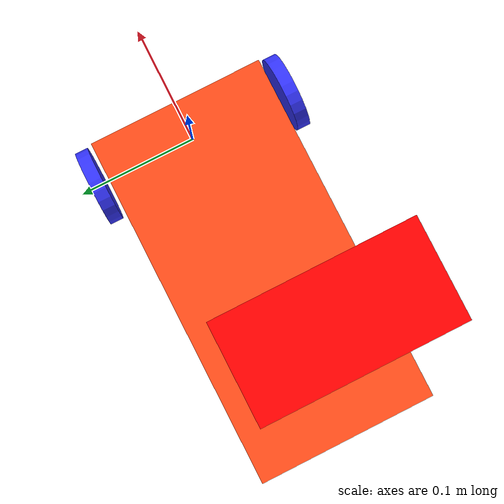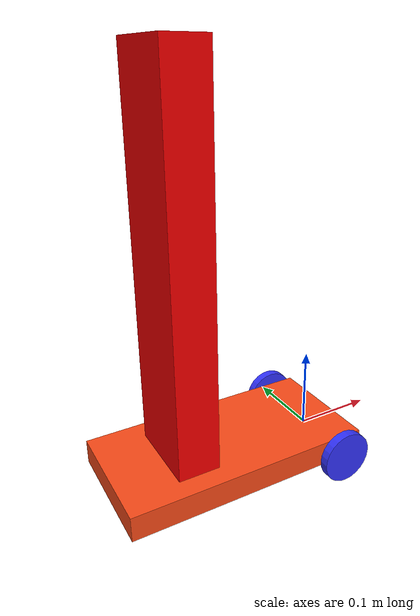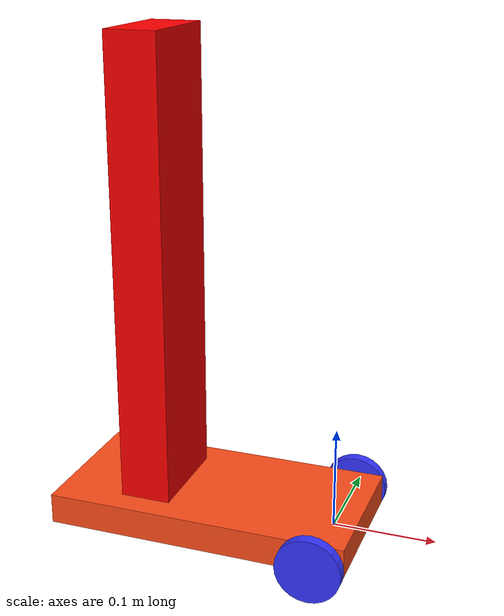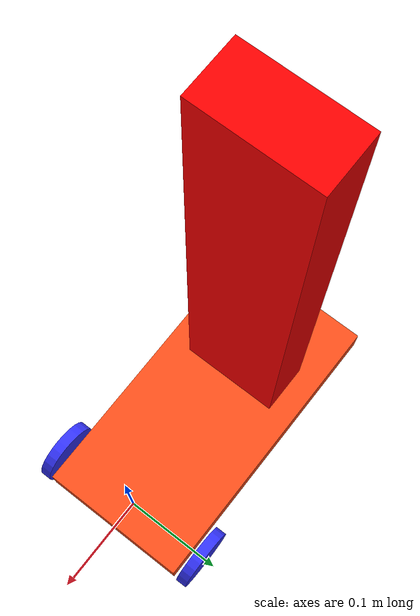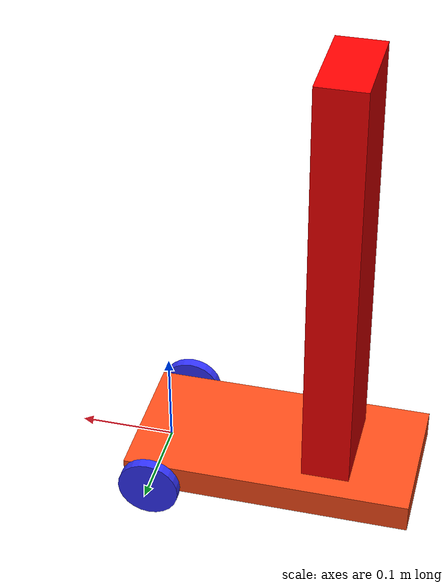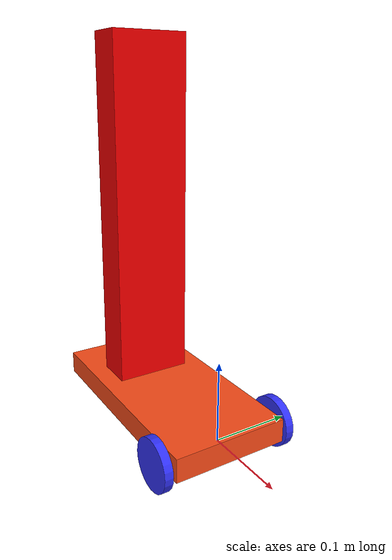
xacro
<?xml version="1.0"?>
<robot xmlns:xacro="http://www.ros.org/wiki/xacro" >

    <xacro:include filename="inertial_macros.xacro"/>

    <xacro:property name="chassis_length" value="0.3"/>
    <xacro:property name="chassis_width" value="0.150"/>
    <xacro:property name="chassis_height" value="0.03"/>
    <xacro:property name="chassis_mass" value="1.0"/>
    <xacro:property name="wheel_radius" value="0.032"/>
    <xacro:property name="wheel_thickness" value="0.011"/>
    <xacro:property name="wheel_mass" value="0.05"/>
    <xacro:property name="wheel_offset_x" value="0.270"/>
    <xacro:property name="wheel_offset_y" value="0.085"/>
    <xacro:property name="wheel_offset_z" value="0.01"/>
    <xacro:property name="caster_wheel_radius" value="0.01"/>
    <xacro:property name="caster_wheel_mass" value="0.01"/>
    <xacro:property name="caster_wheel_offset_x" value="0.017"/>
    <xacro:property name="caster_wheel_offset_z" value="${wheel_offset_z - wheel_radius + caster_wheel_radius}"/>
    <xacro:property name="lift_length" value="0.05"/>
    <xacro:property name="lift_width" value="0.1"/>
    <xacro:property name="lift_height" value="0.45"/>
    <!-- ${lift_length} ${lift_width} ${lift_height} -->

    <material name="white">
        <color rgba="1 1 1 1" />
    </material>

    <material name="orange">
        <color rgba="1 0.3 0.1 1"/>
    </material>

    <material name="blue">
        <color rgba="0.2 0.2 1 1"/>
    </material>

    <material name="black">
        <color rgba="0 0 0 1"/>
    </material>

    <material name="red">
        <color rgba="1 0 0 1"/>
    </material>

    <!-- BASE LINK -->

    <link name="base_link">

    </link>

    <!-- BASE_FOOTPRINT LINK -->

    <joint name="base_footprint_joint" type="fixed">
        <parent link="base_link"/>
        <child link="base_footprint"/>
        <origin xyz="0 0 0" rpy="0 0 0"/>
    </joint>

    <link name="base_footprint">
    </link>

    <!-- CHASSIS LINK -->

    <joint name="chassis_joint" type="fixed">
        <parent link="base_link"/>
        <child link="chassis"/>
        <origin xyz="${-wheel_offset_x} 0 ${-wheel_offset_z}"/>
    </joint>

    <link name="chassis">
        <visual>
            <origin xyz="${chassis_length/2} 0 ${chassis_height/2}"/>
            <geometry>
                <box size="${chassis_length} ${chassis_width} ${chassis_height}"/>
            </geometry>
            <material name="orange"/>
        </visual>
        <collision>
            <origin xyz="${chassis_length/2} 0 ${chassis_height/2}"/>
            <geometry>
                <box size="${chassis_length} ${chassis_width} ${chassis_height}"/>
            </geometry>
        </collision>
        <xacro:inertial_box mass="0.5" x="${chassis_length}" y="${chassis_width}" z="${chassis_height}">
            <origin xyz="${chassis_length/2} 0 ${chassis_height/2}" rpy="0 0 0"/>
        </xacro:inertial_box>
    </link>

    <gazebo reference="chassis">
        <material>Gazebo/Orange</material>
    </gazebo>

    <!-- LIFT LINK -->

    <joint name="lift_joint" type="fixed">
        <parent link="base_link"/>
        <child link="lift"/>
        <origin xyz="${-wheel_offset_x} 0 ${-wheel_offset_z}"/>
    </joint>

    <link name="lift">
        <visual>
            <origin xyz="${chassis_length/3.3} 0 ${chassis_height+lift_height/2}"/>
            <geometry>
                <box size="${lift_length} ${lift_width} ${lift_height}"/>
            </geometry>
            <material name="red"/>
        </visual>
        <collision>
            <origin xyz="${chassis_length/3.3} 0 ${chassis_height+lift_height/2}"/>
            <geometry>
                <box size="${lift_length} ${lift_width} ${lift_height}"/>
            </geometry>
        </collision>
        <xacro:inertial_box mass="0.5" x="${lift_length}" y="${lift_width}" z="${lift_height}">
            <origin xyz="${chassis_length/3} 0 ${chassis_height}" rpy="0 0 0"/>
        </xacro:inertial_box>
    </link>

    <gazebo reference="chassis">
        <material>Gazebo/Orange</material>
    </gazebo>

    <!-- LEFT WHEEL LINK -->

    <joint name="left_wheel_joint" type="continuous">
        <parent link="base_link"/>
        <child link="left_wheel"/>
        <origin xyz="0 ${wheel_offset_y} 0" rpy="-${pi/2} 0 0" />
        <axis xyz="0 0 1"/>
    </joint>

    <link name="left_wheel">
        <visual>
            <geometry>
                <cylinder radius="${wheel_radius}" length="${wheel_thickness}"/>
            </geometry>
            <material name="blue"/>
        </visual>
        <collision>
            <geometry>
                <sphere radius="${wheel_radius}"/>
            </geometry>
        </collision>
        <xacro:inertial_cylinder mass="${wheel_mass}" length="${wheel_thickness}" radius="${wheel_radius}">
            <origin xyz="0 0 0" rpy="0 0 0"/>
        </xacro:inertial_cylinder>
    </link>

    <gazebo reference="left_wheel">
        <material>Gazebo/Blue</material>
        <mu1 value = "1.1"/>
    </gazebo>

    <!-- RIGHT WHEEL LINK -->

    <joint name="right_wheel_joint" type="continuous">
        <parent link="base_link"/>
        <child link="right_wheel"/>
        <origin xyz="0 ${-wheel_offset_y} 0" rpy="${pi/2} 0 0" />
        <axis xyz="0 0 -1"/>
    </joint>

    <link name="right_wheel">
        <visual>
            <geometry>
                <cylinder radius="${wheel_radius}" length="${wheel_thickness}"/>
            </geometry>
            <material name="blue"/>
        </visual>
        <collision>
            <geometry>
                <sphere radius="${wheel_radius}"/>
            </geometry>
        </collision>
        <xacro:inertial_cylinder mass="${wheel_mass}" length="${wheel_thickness}" radius="${wheel_radius}">
            <origin xyz="0 0 0" rpy="0 0 0"/>
        </xacro:inertial_cylinder>
    </link>

    <gazebo reference="right_wheel">
        <material>Gazebo/Blue</material>
        <mu1 value = "1.1"/>
    </gazebo>

    <!-- CASTER WHEEL LINK -->

    <joint name="caster_wheel_joint" type="fixed">
        <parent link="chassis"/>
        <child link="caster_wheel"/>
        <origin xyz="${caster_wheel_offset_x} 0 ${caster_wheel_offset_z}"/>
    </joint>

    <link name="caster_wheel">
        <visual>
            <geometry>
                <sphere radius="${caster_wheel_radius}"/>
            </geometry>
            <material name="white"/>
        </visual>
        <collision>
            <geometry>
                <sphere radius="${caster_wheel_radius}"/>
            </geometry>
        </collision>
        <xacro:inertial_sphere mass="${caster_wheel_mass}" radius="${caster_wheel_radius}">
            <origin xyz="0 0 0" rpy="0 0 0"/>
        </xacro:inertial_sphere>
    </link>

    <gazebo reference="caster_wheel">
        <material>Gazebo/White</material>
        <mu1 value="0.001"/>
        <mu2 value="0.001"/>
    </gazebo>

</robot>
